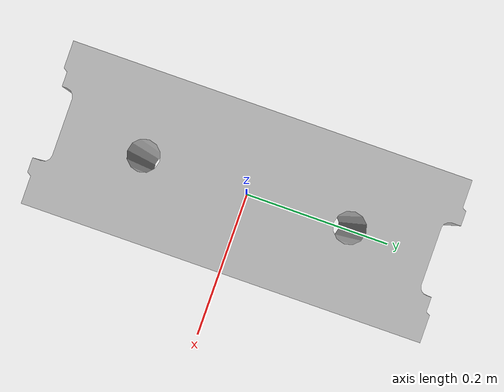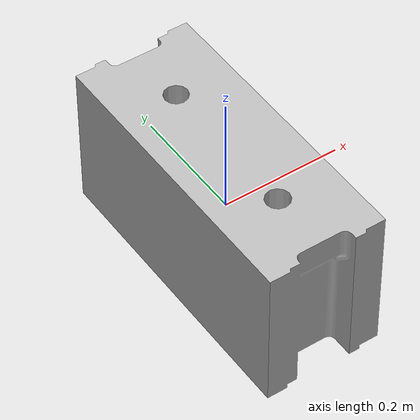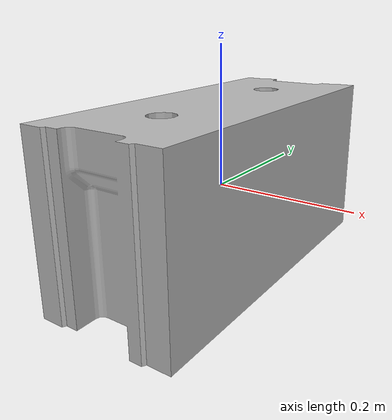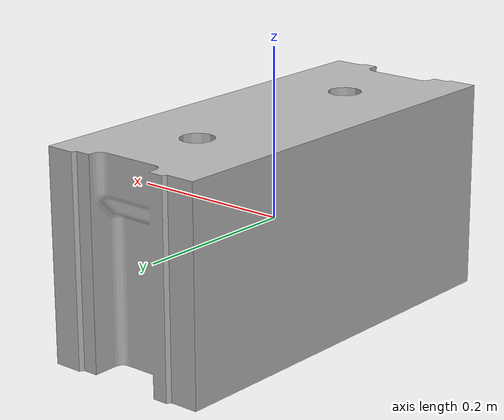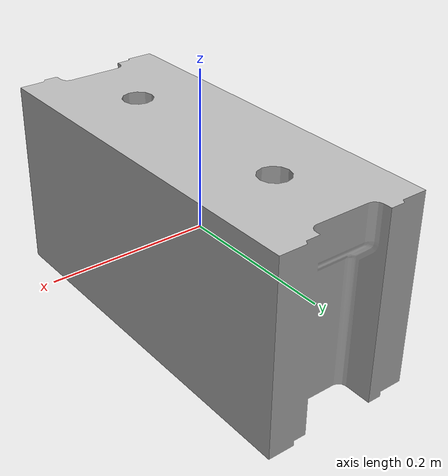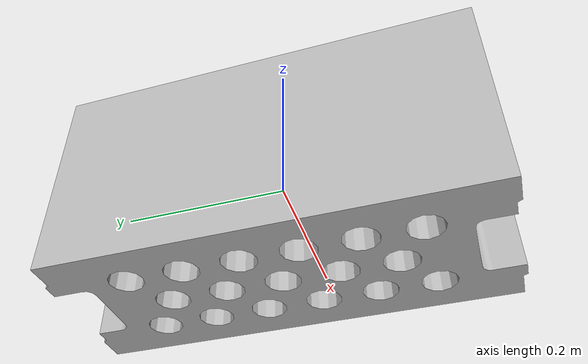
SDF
<?xml version="1.0"?>
<sdf version="1.4">
    <model name="trimesh">
        <static>0</static>
        <allow_auto_disable>1</allow_auto_disable>
        <link name="trimesh_link">
            <inertial>
                <pose>0 0 0 0 0 0</pose>
                <mass>1</mass>
                <inertia>
                    <ixx>0.026041666666666668</ixx>
                    <ixy>0</ixy>
                    <ixz>0</ixz>
                    <iyy>0.008541666666666668</iyy>
                    <iyz>0</iyz>
                    <izz>0.02416666666666667</izz>
                </inertia>
            </inertial>
            <collision name="collision">
                <max_contacts>16</max_contacts>
                <pose>0 0 0 0 0 0</pose>
                <geometry>
                    <mesh>
                        <uri>model://trimesh_collision_gazebo/meshes/trimesh.stl</uri>
                        <scale>1 1 1</scale>
                    </mesh>
                </geometry>
                <surface>
                    <friction>
                        <ode>
                            <mu>10</mu>
                            <mu2>10</mu2>
                        </ode>
                    </friction>
                    <contact>
                        <ode>
                            <kp>1e15</kp>
                            <kd>1e13</kd>
                            <max_vel>0.01</max_vel>
                            <min_depth>0.0</min_depth>
                        </ode>
                        <bullet>
                            <soft_cfm>0.0</soft_cfm>
                            <soft_erp>0.2</soft_erp>
                            <split_impulse>1</split_impulse>
                            <split_impulse_penetration_threshold>-0.01</split_impulse_penetration_threshold>
                        </bullet>
                    </contact>
                </surface>
            </collision>
            <visual name="visual">
                <pose>0 0 0 0 0 0</pose>
                <geometry>
                    <mesh>
                        <uri>model://trimesh_collision_gazebo/meshes/trimesh.stl</uri>
                        <scale>1 1 1</scale>
                    </mesh>
                </geometry>
                <material>
                    <script>Gazebo/DarkGreen</script>
                </material>
            </visual>
        </link>
    </model>
</sdf>
